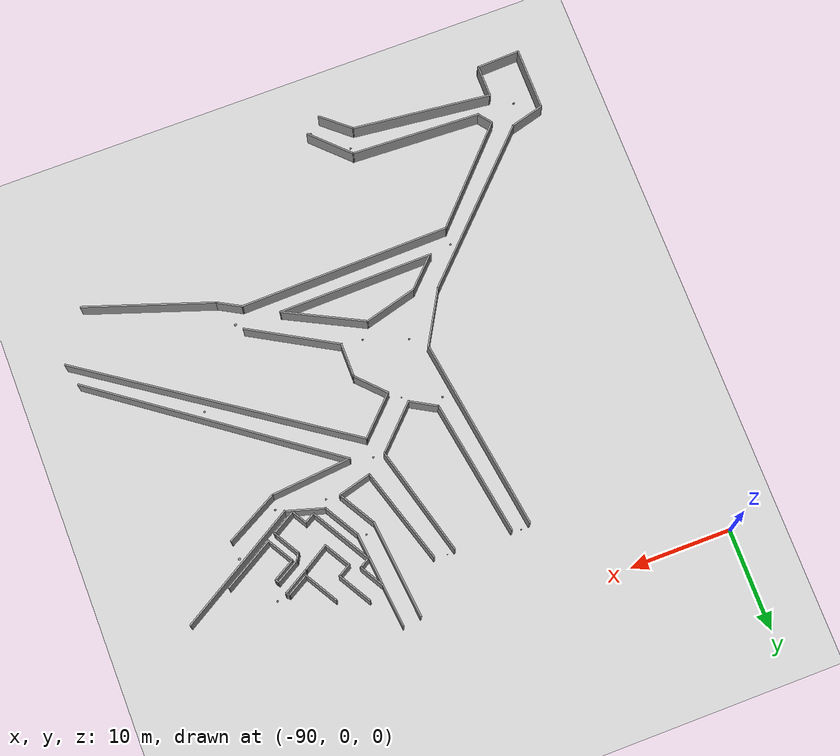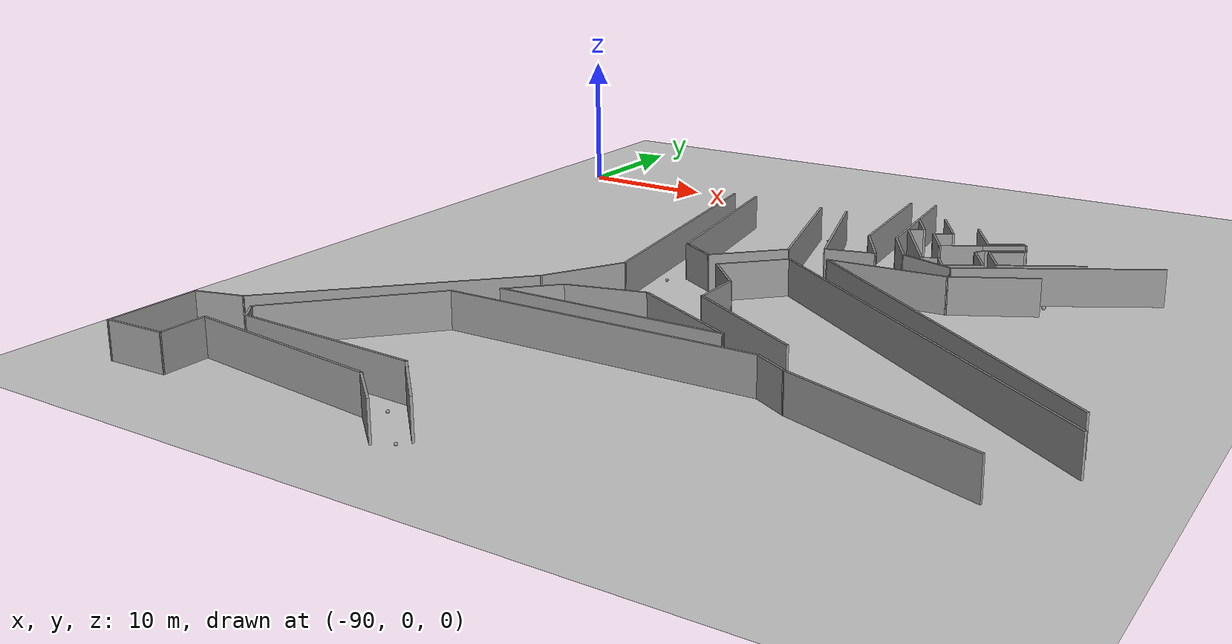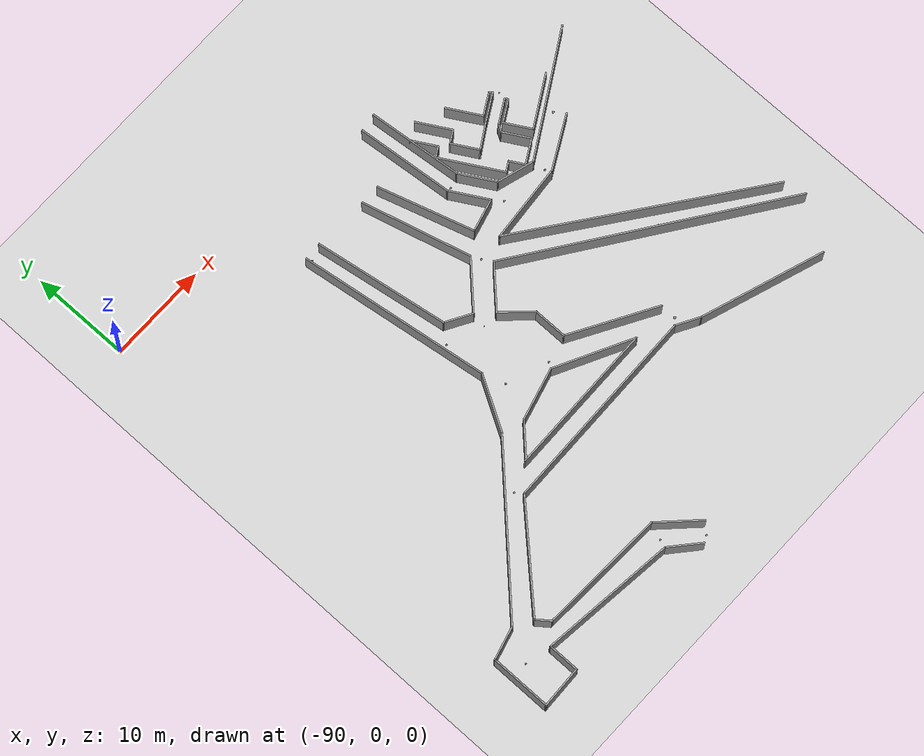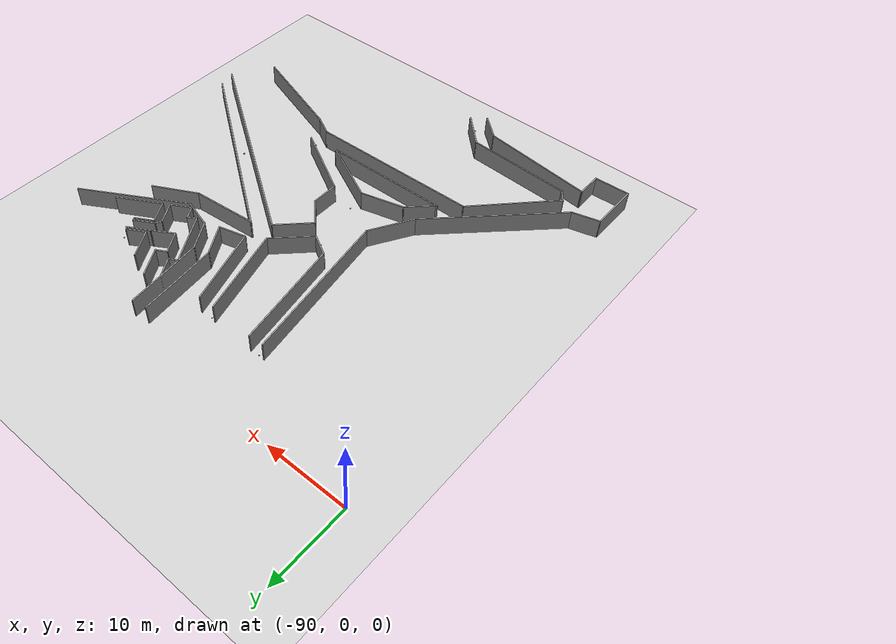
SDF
<sdf version="1.7">
 <world name="default">
  <model name="ground_plane">
   <static>1</static>
   <link name="link">
    <collision name="collision">
     <geometry><plane><normal>0 0 1</normal><size>100 100</size></plane></geometry>
     <surface><friction><ode><mu>100</mu><mu2>50</mu2></ode></friction></surface>
    </collision>
    <visual name="visual">
     <cast_shadows>0</cast_shadows>
     <geometry><plane><normal>0 0 1</normal><size>100 100</size></plane></geometry>
     <material>
      <script><uri>file://media/materials/scripts/gazebo.material</uri><name>Gazebo/Grey</name></script>
     </material>
    </visual>
   </link>
  </model>
  <model name="final_max_v1">
   <pose>-2.5231 0.6891 0 0 -0 0</pose>
   <link name="Wall_0">
    <collision name="Wall_0_Collision">
     <geometry><box><size>6.25 0.15 2.5</size></box></geometry>
     <pose>0 0 1.25 0 -0 0</pose>
    </collision>
    <visual name="Wall_0_Visual">
     <pose>0 0 1.25 0 -0 0</pose>
     <geometry><box><size>6.25 0.15 2.5</size></box></geometry>
     <material>
      <script><uri>file://media/materials/scripts/gazebo.material</uri><name>Gazebo/Grey</name></script>
      <ambient>1 1 1 1</ambient>
     </material>
     <meta><layer>0</layer></meta>
    </visual>
    <pose>-86.0864 -48.4326 0 0 -0 1.5708</pose>
   </link>
   <link name="Wall_100">
    <collision name="Wall_100_Collision">
     <geometry><box><size>19.4552 0.15 2.5</size></box></geometry>
     <pose>0 0 1.25 0 -0 0</pose>
    </collision>
    <visual name="Wall_100_Visual">
     <pose>0 0 1.25 0 -0 0</pose>
     <geometry><box><size>19.4552 0.15 2.5</size></box></geometry>
     <material>
      <script><uri>file://media/materials/scripts/gazebo.material</uri><name>Gazebo/Grey</name></script>
      <ambient>1 1 1 1</ambient>
     </material>
     <meta><layer>0</layer></meta>
    </visual>
    <pose>-68.6774 -17.2731 0 0 -0 1.7136</pose>
   </link>
   <link name="Wall_126">
    <collision name="Wall_126_Collision">
     <geometry><box><size>3.75 0.15 2.5</size></box></geometry>
     <pose>0 0 1.25 0 -0 0</pose>
    </collision>
    <visual name="Wall_126_Visual">
     <pose>0 0 1.25 0 -0 0</pose>
     <geometry><box><size>3.75 0.15 2.5</size></box></geometry>
     <material>
      <script><uri>file://media/materials/scripts/gazebo.material</uri><name>Gazebo/Grey</name></script>
      <ambient>1 1 1 1</ambient>
     </material>
     <meta><layer>0</layer></meta>
    </visual>
    <pose>-69.2284 -33.7829 0 0 -0 0.785398</pose>
   </link>
   <link name="Wall_127">
    <collision name="Wall_127_Collision">
     <geometry><box><size>5.5 0.15 2.5</size></box></geometry>
     <pose>0 0 1.25 0 -0 0</pose>
    </collision>
    <visual name="Wall_127_Visual">
     <pose>0 0 1.25 0 -0 0</pose>
     <geometry><box><size>5.5 0.15 2.5</size></box></geometry>
     <material>
      <script><uri>file://media/materials/scripts/gazebo.material</uri><name>Gazebo/Grey</name></script>
      <ambient>1 1 1 1</ambient>
     </material>
     <meta><layer>0</layer></meta>
    </visual>
    <pose>-65.3717 -31.8178 0 0 -0 0.261799</pose>
   </link>
   <link name="Wall_128">
    <collision name="Wall_128_Collision">
     <geometry><box><size>8.46258 0.15 2.5</size></box></geometry>
     <pose>0 0 1.25 0 -0 0</pose>
    </collision>
    <visual name="Wall_128_Visual">
     <pose>0 0 1.25 0 -0 0</pose>
     <geometry><box><size>8.46258 0.15 2.5</size></box></geometry>
     <material>
      <script><uri>file://media/materials/scripts/gazebo.material</uri><name>Gazebo/Grey</name></script>
      <ambient>1 1 1 1</ambient>
     </material>
     <meta><layer>0</layer></meta>
    </visual>
    <pose>-59.0888 -33.0206 0 0 -0 -0.47347</pose>
   </link>
   <link name="Wall_129">
    <collision name="Wall_129_Collision">
     <geometry><box><size>15.488 0.15 2.5</size></box></geometry>
     <pose>0 0 1.25 0 -0 0</pose>
    </collision>
    <visual name="Wall_129_Visual">
     <pose>0 0 1.25 0 -0 0</pose>
     <geometry><box><size>15.488 0.15 2.5</size></box></geometry>
     <material>
      <script><uri>file://media/materials/scripts/gazebo.material</uri><name>Gazebo/Grey</name></script>
      <ambient>1 1 1 1</ambient>
     </material>
     <meta><layer>0</layer></meta>
    </visual>
    <pose>-63.0581 -35.0458 0 0 -0 -3.12463</pose>
   </link>
   <link name="Wall_142">
    <collision name="Wall_142_Collision">
     <geometry><box><size>3 0.15 2.5</size></box></geometry>
     <pose>0 0 1.25 0 -0 0</pose>
    </collision>
    <visual name="Wall_142_Visual">
     <pose>0 0 1.25 0 -0 0</pose>
     <geometry><box><size>3 0.15 2.5</size></box></geometry>
     <material>
      <script><uri>file://media/materials/scripts/gazebo.material</uri><name>Gazebo/Grey</name></script>
      <ambient>1 1 1 1</ambient>
     </material>
     <meta><layer>0</layer></meta>
    </visual>
    <pose>-64.8763 -21.7565 0 0 -0 2.61799</pose>
   </link>
   <link name="Wall_143">
    <collision name="Wall_143_Collision">
     <geometry><box><size>13.7057 0.15 2.5</size></box></geometry>
     <pose>0 0 1.25 0 -0 0</pose>
    </collision>
    <visual name="Wall_143_Visual">
     <pose>0 0 1.25 0 -0 0</pose>
     <geometry><box><size>13.7057 0.15 2.5</size></box></geometry>
     <material>
      <script><uri>file://media/materials/scripts/gazebo.material</uri><name>Gazebo/Grey</name></script>
      <ambient>1 1 1 1</ambient>
     </material>
     <meta><layer>0</layer></meta>
    </visual>
    <pose>-67.1763 -14.3505 0 0 -0 1.72872</pose>
   </link>
   <link name="Wall_177">
    <collision name="Wall_177_Collision">
     <geometry><box><size>11.25 0.15 2.5</size></box></geometry>
     <pose>0 0 1.25 0 -0 0</pose>
    </collision>
    <visual name="Wall_177_Visual">
     <pose>0 0 1.25 0 -0 0</pose>
     <geometry><box><size>11.25 0.15 2.5</size></box></geometry>
     <material>
      <script><uri>file://media/materials/scripts/gazebo.material</uri><name>Gazebo/Grey</name></script>
      <ambient>1 1 1 1</ambient>
     </material>
     <meta><layer>0</layer></meta>
    </visual>
    <pose>-61.219 -13.2274 0 0 -0 1.8326</pose>
   </link>
   <link name="Wall_195">
    <collision name="Wall_195_Collision">
     <geometry><box><size>9.95782 0.15 2.5</size></box></geometry>
     <pose>0 0 1.25 0 -0 0</pose>
    </collision>
    <visual name="Wall_195_Visual">
     <pose>0 0 1.25 0 -0 0</pose>
     <geometry><box><size>9.95782 0.15 2.5</size></box></geometry>
     <material>
      <script><uri>file://media/materials/scripts/gazebo.material</uri><name>Gazebo/Grey</name></script>
      <ambient>1 1 1 1</ambient>
     </material>
     <meta><layer>0</layer></meta>
    </visual>
    <pose>-59.1949 -12.5474 0 0 -0 1.86585</pose>
   </link>
   <link name="Wall_2">
    <collision name="Wall_2_Collision">
     <geometry><box><size>3.25 0.15 2.5</size></box></geometry>
     <pose>0 0 1.25 0 -0 0</pose>
    </collision>
    <visual name="Wall_2_Visual">
     <pose>0 0 1.25 0 -0 0</pose>
     <geometry><box><size>3.25 0.15 2.5</size></box></geometry>
     <material>
      <script><uri>file://media/materials/scripts/gazebo.material</uri><name>Gazebo/Grey</name></script>
      <ambient>1 1 1 1</ambient>
     </material>
     <meta><layer>0</layer></meta>
    </visual>
    <pose>-81.869 -49.7753 0 0 -0 1.5708</pose>
   </link>
   <link name="Wall_3">
    <collision name="Wall_3_Collision">
     <geometry><box><size>13.848 0.15 2.5</size></box></geometry>
     <pose>0 0 1.25 0 -0 0</pose>
    </collision>
    <visual name="Wall_3_Visual">
     <pose>0 0 1.25 0 -0 0</pose>
     <geometry><box><size>13.848 0.15 2.5</size></box></geometry>
     <material>
      <script><uri>file://media/materials/scripts/gazebo.material</uri><name>Gazebo/Grey</name></script>
      <ambient>1 1 1 1</ambient>
     </material>
     <meta><layer>0</layer></meta>
    </visual>
    <pose>-75.0629 -48.9907 0 0 -0 -0.111993</pose>
   </link>
   <link name="Wall_4">
    <collision name="Wall_4_Collision">
     <geometry><box><size>3.68163 0.15 2.5</size></box></geometry>
     <pose>0 0 1.25 0 -0 0</pose>
    </collision>
    <visual name="Wall_4_Visual">
     <pose>0 0 1.25 0 -0 0</pose>
     <geometry><box><size>3.68163 0.15 2.5</size></box></geometry>
     <material>
      <script><uri>file://media/materials/scripts/gazebo.material</uri><name>Gazebo/Grey</name></script>
      <ambient>1 1 1 1</ambient>
     </material>
     <meta><layer>0</layer></meta>
    </visual>
    <pose>-66.923 -50.9134 0 0 -0 -0.71465</pose>
   </link>
   <link name="Wall_471">
    <collision name="Wall_471_Collision">
     <geometry><box><size>3.5 0.15 2.5</size></box></geometry>
     <pose>0 0 1.25 0 -0 0</pose>
    </collision>
    <visual name="Wall_471_Visual">
     <pose>0 0 1.25 0 -0 0</pose>
     <geometry><box><size>3.5 0.15 2.5</size></box></geometry>
     <material>
      <script><uri>file://media/materials/scripts/gazebo.material</uri><name>Gazebo/Grey</name></script>
      <ambient>1 1 1 1</ambient>
     </material>
     <meta><layer>0</layer></meta>
    </visual>
    <pose>-56.1509 -16.8059 0 0 -0 0.261799</pose>
   </link>
   <link name="Wall_478">
    <collision name="Wall_478_Collision">
     <geometry><box><size>5.5 0.15 2.5</size></box></geometry>
     <pose>0 0 1.25 0 -0 0</pose>
    </collision>
    <visual name="Wall_478_Visual">
     <pose>0 0 1.25 0 -0 0</pose>
     <geometry><box><size>5.5 0.15 2.5</size></box></geometry>
     <material>
      <script><uri>file://media/materials/scripts/gazebo.material</uri><name>Gazebo/Grey</name></script>
      <ambient>1 1 1 1</ambient>
     </material>
     <meta><layer>0</layer></meta>
    </visual>
    <pose>-61.7507 -20.5775 0 0 -0 0.785398</pose>
   </link>
   <link name="Wall_481">
    <collision name="Wall_481_Collision">
     <geometry><box><size>5 0.15 2.5</size></box></geometry>
     <pose>0 0 1.25 0 -0 0</pose>
    </collision>
    <visual name="Wall_481_Visual">
     <pose>0 0 1.25 0 -0 0</pose>
     <geometry><box><size>5 0.15 2.5</size></box></geometry>
     <material>
      <script><uri>file://media/materials/scripts/gazebo.material</uri><name>Gazebo/Grey</name></script>
      <ambient>1 1 1 1</ambient>
     </material>
     <meta><layer>0</layer></meta>
    </visual>
    <pose>-60.4316 -22.231 0 0 -0 0.785398</pose>
   </link>
   <link name="Wall_482">
    <collision name="Wall_482_Collision">
     <geometry><box><size>29.4407 0.15 2.5</size></box></geometry>
     <pose>0 0 1.25 0 -0 0</pose>
    </collision>
    <visual name="Wall_482_Visual">
     <pose>0 0 1.25 0 -0 0</pose>
     <geometry><box><size>29.4407 0.15 2.5</size></box></geometry>
     <material>
      <script><uri>file://media/materials/scripts/gazebo.material</uri><name>Gazebo/Grey</name></script>
      <ambient>1 1 1 1</ambient>
     </material>
     <meta><layer>0</layer></meta>
    </visual>
    <pose>-46.6969 -28.8832 0 0 -0 -0.60809</pose>
   </link>
   <link name="Wall_487">
    <collision name="Wall_487_Collision">
     <geometry><box><size>9.5 0.15 2.5</size></box></geometry>
     <pose>0 0 1.25 0 -0 0</pose>
    </collision>
    <visual name="Wall_487_Visual">
     <pose>0 0 1.25 0 -0 0</pose>
     <geometry><box><size>9.5 0.15 2.5</size></box></geometry>
     <material>
      <script><uri>file://media/materials/scripts/gazebo.material</uri><name>Gazebo/Grey</name></script>
      <ambient>1 1 1 1</ambient>
     </material>
     <meta><layer>0</layer></meta>
    </visual>
    <pose>-55.6298 -32.2518 0 0 -0 2.61799</pose>
   </link>
   <link name="Wall_488">
    <collision name="Wall_488_Collision">
     <geometry><box><size>3.5 0.15 2.5</size></box></geometry>
     <pose>0 0 1.25 0 -0 0</pose>
    </collision>
    <visual name="Wall_488_Visual">
     <pose>0 0 1.25 0 -0 0</pose>
     <geometry><box><size>3.5 0.15 2.5</size></box></geometry>
     <material>
      <script><uri>file://media/materials/scripts/gazebo.material</uri><name>Gazebo/Grey</name></script>
      <ambient>1 1 1 1</ambient>
     </material>
     <meta><layer>0</layer></meta>
    </visual>
    <pose>-59.6785 -28.2393 0 0 -0 1.5708</pose>
   </link>
   <link name="Wall_491">
    <collision name="Wall_491_Collision">
     <geometry><box><size>3.74817 0.15 2.5</size></box></geometry>
     <pose>0 0 1.25 0 -0 0</pose>
    </collision>
    <visual name="Wall_491_Visual">
     <pose>0 0 1.25 0 -0 0</pose>
     <geometry><box><size>3.74817 0.15 2.5</size></box></geometry>
     <material>
      <script><uri>file://media/materials/scripts/gazebo.material</uri><name>Gazebo/Grey</name></script>
      <ambient>1 1 1 1</ambient>
     </material>
     <meta><layer>0</layer></meta>
    </visual>
    <pose>-60.9124 -25.255 0 0 -0 -0.814998</pose>
   </link>
   <link name="Wall_569">
    <collision name="Wall_569_Collision">
     <geometry><box><size>26.6614 0.15 2.5</size></box></geometry>
     <pose>0 0 1.25 0 -0 0</pose>
    </collision>
    <visual name="Wall_569_Visual">
     <pose>0 0 1.25 0 -0 0</pose>
     <geometry><box><size>26.6614 0.15 2.5</size></box></geometry>
     <material>
      <script><uri>file://media/materials/scripts/gazebo.material</uri><name>Gazebo/Grey</name></script>
      <ambient>1 1 1 1</ambient>
     </material>
     <meta><layer>0</layer></meta>
    </visual>
    <pose>-45.8954 -27.1535 0 0 -0 -0.634161</pose>
   </link>
   <link name="Wall_572">
    <collision name="Wall_572_Collision">
     <geometry><box><size>5.86248 0.15 2.5</size></box></geometry>
     <pose>0 0 1.25 0 -0 0</pose>
    </collision>
    <visual name="Wall_572_Visual">
     <pose>0 0 1.25 0 -0 0</pose>
     <geometry><box><size>5.86248 0.15 2.5</size></box></geometry>
     <material>
      <script><uri>file://media/materials/scripts/gazebo.material</uri><name>Gazebo/Grey</name></script>
      <ambient>1 1 1 1</ambient>
     </material>
     <meta><layer>0</layer></meta>
    </visual>
    <pose>-46.1662 -17.2489 0 0 -0 -2.64765</pose>
   </link>
   <link name="Wall_573">
    <collision name="Wall_573_Collision">
     <geometry><box><size>8.07338 0.15 2.5</size></box></geometry>
     <pose>0 0 1.25 0 -0 0</pose>
    </collision>
    <visual name="Wall_573_Visual">
     <pose>0 0 1.25 0 -0 0</pose>
     <geometry><box><size>8.07338 0.15 2.5</size></box></geometry>
     <material>
      <script><uri>file://media/materials/scripts/gazebo.material</uri><name>Gazebo/Grey</name></script>
      <ambient>1 1 1 1</ambient>
     </material>
     <meta><layer>0</layer></meta>
    </visual>
    <pose>-52.6274 -18.9513 0 0 -0 -3.05358</pose>
   </link>
   <link name="Wall_622">
    <collision name="Wall_622_Collision">
     <geometry><box><size>4.25 0.15 2.5</size></box></geometry>
     <pose>0 0 1.25 0 -0 0</pose>
    </collision>
    <visual name="Wall_622_Visual">
     <pose>0 0 1.25 0 -0 0</pose>
     <geometry><box><size>4.25 0.15 2.5</size></box></geometry>
     <material>
      <script><uri>file://media/materials/scripts/gazebo.material</uri><name>Gazebo/Grey</name></script>
      <ambient>1 1 1 1</ambient>
     </material>
     <meta><layer>0</layer></meta>
    </visual>
    <pose>-55.558 -14.597 0 0 -0 2.0944</pose>
   </link>
   <link name="Wall_623">
    <collision name="Wall_623_Collision">
     <geometry><box><size>9.84854 0.15 2.5</size></box></geometry>
     <pose>0 0 1.25 0 -0 0</pose>
    </collision>
    <visual name="Wall_623_Visual">
     <pose>0 0 1.25 0 -0 0</pose>
     <geometry><box><size>9.84854 0.15 2.5</size></box></geometry>
     <material>
      <script><uri>file://media/materials/scripts/gazebo.material</uri><name>Gazebo/Grey</name></script>
      <ambient>1 1 1 1</ambient>
     </material>
     <meta><layer>0</layer></meta>
    </visual>
    <pose>-57.0579 -7.99572 0 0 -0 1.66889</pose>
   </link>
   <link name="Wall_633">
    <collision name="Wall_633_Collision">
     <geometry><box><size>4 0.15 2.5</size></box></geometry>
     <pose>0 0 1.25 0 -0 0</pose>
    </collision>
    <visual name="Wall_633_Visual">
     <pose>0 0 1.25 0 -0 0</pose>
     <geometry><box><size>4 0.15 2.5</size></box></geometry>
     <material>
      <script><uri>file://media/materials/scripts/gazebo.material</uri><name>Gazebo/Grey</name></script>
      <ambient>1 1 1 1</ambient>
     </material>
     <meta><layer>0</layer></meta>
    </visual>
    <pose>-53.8105 -14.0024 0 0 -0 2.0944</pose>
   </link>
   <link name="Wall_634">
    <collision name="Wall_634_Collision">
     <geometry><box><size>9.63115 0.15 2.5</size></box></geometry>
     <pose>0 0 1.25 0 -0 0</pose>
    </collision>
    <visual name="Wall_634_Visual">
     <pose>0 0 1.25 0 -0 0</pose>
     <geometry><box><size>9.63115 0.15 2.5</size></box></geometry>
     <material>
      <script><uri>file://media/materials/scripts/gazebo.material</uri><name>Gazebo/Grey</name></script>
      <ambient>1 1 1 1</ambient>
     </material>
     <meta><layer>0</layer></meta>
    </visual>
    <pose>-55.2461 -7.61841 0 0 -0 1.67077</pose>
   </link>
   <link name="Wall_641">
    <collision name="Wall_641_Collision">
     <geometry><box><size>3.96544 0.15 2.5</size></box></geometry>
     <pose>0 0 1.25 0 -0 0</pose>
    </collision>
    <visual name="Wall_641_Visual">
     <pose>0 0 1.25 0 -0 0</pose>
     <geometry><box><size>3.96544 0.15 2.5</size></box></geometry>
     <material>
      <script><uri>file://media/materials/scripts/gazebo.material</uri><name>Gazebo/Grey</name></script>
      <ambient>1 1 1 1</ambient>
     </material>
     <meta><layer>0</layer></meta>
    </visual>
    <pose>-51.0202 -16.216 0 0 -0 -0.290546</pose>
   </link>
   <link name="Wall_642">
    <collision name="Wall_642_Collision">
     <geometry><box><size>13.6938 0.15 2.5</size></box></geometry>
     <pose>0 0 1.25 0 -0 0</pose>
    </collision>
    <visual name="Wall_642_Visual">
     <pose>0 0 1.25 0 -0 0</pose>
     <geometry><box><size>13.6938 0.15 2.5</size></box></geometry>
     <material>
      <script><uri>file://media/materials/scripts/gazebo.material</uri><name>Gazebo/Grey</name></script>
      <ambient>1 1 1 1</ambient>
     </material>
     <meta><layer>0</layer></meta>
    </visual>
    <pose>-43.3618 -13.3183 0 0 -0 0.533565</pose>
   </link>
   <link name="Wall_661">
    <collision name="Wall_661_Collision">
     <geometry><box><size>3.75 0.15 2.5</size></box></geometry>
     <pose>0 0 1.25 0 -0 0</pose>
    </collision>
    <visual name="Wall_661_Visual">
     <pose>0 0 1.25 0 -0 0</pose>
     <geometry><box><size>3.75 0.15 2.5</size></box></geometry>
     <material>
      <script><uri>file://media/materials/scripts/gazebo.material</uri><name>Gazebo/Grey</name></script>
      <ambient>1 1 1 1</ambient>
     </material>
     <meta><layer>0</layer></meta>
    </visual>
    <pose>-49.8924 -8.87143 0 0 -0 -1.0472</pose>
   </link>
   <link name="Wall_662">
    <collision name="Wall_662_Collision">
     <geometry><box><size>2.5 0.15 2.5</size></box></geometry>
     <pose>0 0 1.25 0 -0 0</pose>
    </collision>
    <visual name="Wall_662_Visual">
     <pose>0 0 1.25 0 -0 0</pose>
     <geometry><box><size>2.5 0.15 2.5</size></box></geometry>
     <material>
      <script><uri>file://media/materials/scripts/gazebo.material</uri><name>Gazebo/Grey</name></script>
      <ambient>1 1 1 1</ambient>
     </material>
     <meta><layer>0</layer></meta>
    </visual>
    <pose>-47.9748 -9.84278 0 0 -0 0.523599</pose>
   </link>
   <link name="Wall_663">
    <collision name="Wall_663_Collision">
     <geometry><box><size>0.5 0.15 2.5</size></box></geometry>
     <pose>0 0 1.25 0 -0 0</pose>
    </collision>
    <visual name="Wall_663_Visual">
     <pose>0 0 1.25 0 -0 0</pose>
     <geometry><box><size>0.5 0.15 2.5</size></box></geometry>
     <material>
      <script><uri>file://media/materials/scripts/gazebo.material</uri><name>Gazebo/Grey</name></script>
      <ambient>1 1 1 1</ambient>
     </material>
     <meta><layer>0</layer></meta>
    </visual>
    <pose>-46.8335 -9.37902 0 0 -0 -0.785398</pose>
   </link>
   <link name="Wall_664">
    <collision name="Wall_664_Collision">
     <geometry><box><size>3 0.15 2.5</size></box></geometry>
     <pose>0 0 1.25 0 -0 0</pose>
    </collision>
    <visual name="Wall_664_Visual">
     <pose>0 0 1.25 0 -0 0</pose>
     <geometry><box><size>3 0.15 2.5</size></box></geometry>
     <material>
      <script><uri>file://media/materials/scripts/gazebo.material</uri><name>Gazebo/Grey</name></script>
      <ambient>1 1 1 1</ambient>
     </material>
     <meta><layer>0</layer></meta>
    </visual>
    <pose>-47.9439 -10.2153 0 0 -0 -2.61799</pose>
   </link>
   <link name="Wall_667">
    <collision name="Wall_667_Collision">
     <geometry><box><size>5.75 0.15 2.5</size></box></geometry>
     <pose>0 0 1.25 0 -0 0</pose>
    </collision>
    <visual name="Wall_667_Visual">
     <pose>0 0 1.25 0 -0 0</pose>
     <geometry><box><size>5.75 0.15 2.5</size></box></geometry>
     <material>
      <script><uri>file://media/materials/scripts/gazebo.material</uri><name>Gazebo/Grey</name></script>
      <ambient>1 1 1 1</ambient>
     </material>
     <meta><layer>0</layer></meta>
    </visual>
    <pose>-44.4362 -13.2676 0 0 -0 -2.61799</pose>
   </link>
   <link name="Wall_668">
    <collision name="Wall_668_Collision">
     <geometry><box><size>3 0.15 2.5</size></box></geometry>
     <pose>0 0 1.25 0 -0 0</pose>
    </collision>
    <visual name="Wall_668_Visual">
     <pose>0 0 1.25 0 -0 0</pose>
     <geometry><box><size>3 0.15 2.5</size></box></geometry>
     <material>
      <script><uri>file://media/materials/scripts/gazebo.material</uri><name>Gazebo/Grey</name></script>
      <ambient>1 1 1 1</ambient>
     </material>
     <meta><layer>0</layer></meta>
    </visual>
    <pose>-47.5736 -13.4335 0 0 -0 2.0944</pose>
   </link>
   <link name="Wall_669">
    <collision name="Wall_669_Collision">
     <geometry><box><size>2.5 0.15 2.5</size></box></geometry>
     <pose>0 0 1.25 0 -0 0</pose>
    </collision>
    <visual name="Wall_669_Visual">
     <pose>0 0 1.25 0 -0 0</pose>
     <geometry><box><size>2.5 0.15 2.5</size></box></geometry>
     <material>
      <script><uri>file://media/materials/scripts/gazebo.material</uri><name>Gazebo/Grey</name></script>
      <ambient>1 1 1 1</ambient>
     </material>
     <meta><layer>0</layer></meta>
    </visual>
    <pose>-47.2685 -11.6119 0 0 -0 0.523599</pose>
   </link>
   <link name="Wall_670">
    <collision name="Wall_670_Collision">
     <geometry><box><size>0.5 0.15 2.5</size></box></geometry>
     <pose>0 0 1.25 0 -0 0</pose>
    </collision>
    <visual name="Wall_670_Visual">
     <pose>0 0 1.25 0 -0 0</pose>
     <geometry><box><size>0.5 0.15 2.5</size></box></geometry>
     <material>
      <script><uri>file://media/materials/scripts/gazebo.material</uri><name>Gazebo/Grey</name></script>
      <ambient>1 1 1 1</ambient>
     </material>
     <meta><layer>0</layer></meta>
    </visual>
    <pose>-46.3384 -10.8729 0 0 -0 2.0944</pose>
   </link>
   <link name="Wall_671">
    <collision name="Wall_671_Collision">
     <geometry><box><size>2.75 0.15 2.5</size></box></geometry>
     <pose>0 0 1.25 0 -0 0</pose>
    </collision>
    <visual name="Wall_671_Visual">
     <pose>0 0 1.25 0 -0 0</pose>
     <geometry><box><size>2.75 0.15 2.5</size></box></geometry>
     <material>
      <script><uri>file://media/materials/scripts/gazebo.material</uri><name>Gazebo/Grey</name></script>
      <ambient>1 1 1 1</ambient>
     </material>
     <meta><layer>0</layer></meta>
    </visual>
    <pose>-47.5517 -11.3713 0 0 -0 -2.61799</pose>
   </link>
   <link name="Wall_673">
    <collision name="Wall_673_Collision">
     <geometry><box><size>1.25 0.15 2.5</size></box></geometry>
     <pose>0 0 1.25 0 -0 0</pose>
    </collision>
    <visual name="Wall_673_Visual">
     <pose>0 0 1.25 0 -0 0</pose>
     <geometry><box><size>1.25 0.15 2.5</size></box></geometry>
     <material>
      <script><uri>file://media/materials/scripts/gazebo.material</uri><name>Gazebo/Grey</name></script>
      <ambient>1 1 1 1</ambient>
     </material>
     <meta><layer>0</layer></meta>
    </visual>
    <pose>-54.458 -9.61498 0 0 -0 0.523599</pose>
   </link>
   <link name="Wall_674">
    <collision name="Wall_674_Collision">
     <geometry><box><size>2.75 0.15 2.5</size></box></geometry>
     <pose>0 0 1.25 0 -0 0</pose>
    </collision>
    <visual name="Wall_674_Visual">
     <pose>0 0 1.25 0 -0 0</pose>
     <geometry><box><size>2.75 0.15 2.5</size></box></geometry>
     <material>
      <script><uri>file://media/materials/scripts/gazebo.material</uri><name>Gazebo/Grey</name></script>
      <ambient>1 1 1 1</ambient>
     </material>
     <meta><layer>0</layer></meta>
    </visual>
    <pose>-54.6316 -8.21414 0 0 -0 2.0944</pose>
   </link>
   <link name="Wall_676">
    <collision name="Wall_676_Collision">
     <geometry><box><size>3.75 0.15 2.5</size></box></geometry>
     <pose>0 0 1.25 0 -0 0</pose>
    </collision>
    <visual name="Wall_676_Visual">
     <pose>0 0 1.25 0 -0 0</pose>
     <geometry><box><size>3.75 0.15 2.5</size></box></geometry>
     <material>
      <script><uri>file://media/materials/scripts/gazebo.material</uri><name>Gazebo/Grey</name></script>
      <ambient>1 1 1 1</ambient>
     </material>
     <meta><layer>0</layer></meta>
    </visual>
    <pose>-52.7795 -7.72216 0 0 -0 -1.0472</pose>
   </link>
   <link name="Wall_677">
    <collision name="Wall_677_Collision">
     <geometry><box><size>1.5 0.15 2.5</size></box></geometry>
     <pose>0 0 1.25 0 -0 0</pose>
    </collision>
    <visual name="Wall_677_Visual">
     <pose>0 0 1.25 0 -0 0</pose>
     <geometry><box><size>1.5 0.15 2.5</size></box></geometry>
     <material>
      <script><uri>file://media/materials/scripts/gazebo.material</uri><name>Gazebo/Grey</name></script>
      <ambient>1 1 1 1</ambient>
     </material>
     <meta><layer>0</layer></meta>
    </visual>
    <pose>-52.4641 -9.6185 0 0 -0 -2.61799</pose>
   </link>
   <link name="Wall_678">
    <collision name="Wall_678_Collision">
     <geometry><box><size>3 0.15 2.5</size></box></geometry>
     <pose>0 0 1.25 0 -0 0</pose>
    </collision>
    <visual name="Wall_678_Visual">
     <pose>0 0 1.25 0 -0 0</pose>
     <geometry><box><size>3 0.15 2.5</size></box></geometry>
     <material>
      <script><uri>file://media/materials/scripts/gazebo.material</uri><name>Gazebo/Grey</name></script>
      <ambient>1 1 1 1</ambient>
     </material>
     <meta><layer>0</layer></meta>
    </visual>
    <pose>-52.3361 -11.1901 0 0 -0 -1.0472</pose>
   </link>
   <link name="Wall_679">
    <collision name="Wall_679_Collision">
     <geometry><box><size>3.01715 0.15 2.5</size></box></geometry>
     <pose>0 0 1.25 0 -0 0</pose>
    </collision>
    <visual name="Wall_679_Visual">
     <pose>0 0 1.25 0 -0 0</pose>
     <geometry><box><size>3.01715 0.15 2.5</size></box></geometry>
     <material>
      <script><uri>file://media/materials/scripts/gazebo.material</uri><name>Gazebo/Grey</name></script>
      <ambient>1 1 1 1</ambient>
     </material>
     <meta><layer>0</layer></meta>
    </visual>
    <pose>-50.4008 -11.676 0 0 -0 0.549094</pose>
   </link>
   <link name="Wall_681">
    <collision name="Wall_681_Collision">
     <geometry><box><size>6.75 0.15 2.5</size></box></geometry>
     <pose>0 0 1.25 0 -0 0</pose>
    </collision>
    <visual name="Wall_681_Visual">
     <pose>0 0 1.25 0 -0 0</pose>
     <geometry><box><size>6.75 0.15 2.5</size></box></geometry>
     <material>
      <script><uri>file://media/materials/scripts/gazebo.material</uri><name>Gazebo/Grey</name></script>
      <ambient>1 1 1 1</ambient>
     </material>
     <meta><layer>0</layer></meta>
    </visual>
    <pose>-53.2843 -12.7479 0 0 -0 -1.0472</pose>
   </link>
   <link name="Wall_682">
    <collision name="Wall_682_Collision">
     <geometry><box><size>1.25 0.15 2.5</size></box></geometry>
     <pose>0 0 1.25 0 -0 0</pose>
    </collision>
    <visual name="Wall_682_Visual">
     <pose>0 0 1.25 0 -0 0</pose>
     <geometry><box><size>1.25 0.15 2.5</size></box></geometry>
     <material>
      <script><uri>file://media/materials/scripts/gazebo.material</uri><name>Gazebo/Grey</name></script>
      <ambient>1 1 1 1</ambient>
     </material>
     <meta><layer>0</layer></meta>
    </visual>
    <pose>-51.158 -15.3307 0 0 -0 0.523599</pose>
   </link>
   <link name="Wall_683">
    <collision name="Wall_683_Collision">
     <geometry><box><size>1.75 0.15 2.5</size></box></geometry>
     <pose>0 0 1.25 0 -0 0</pose>
    </collision>
    <visual name="Wall_683_Visual">
     <pose>0 0 1.25 0 -0 0</pose>
     <geometry><box><size>1.75 0.15 2.5</size></box></geometry>
     <material>
      <script><uri>file://media/materials/scripts/gazebo.material</uri><name>Gazebo/Grey</name></script>
      <ambient>1 1 1 1</ambient>
     </material>
     <meta><layer>0</layer></meta>
    </visual>
    <pose>-50.2816 -15.7486 0 0 -0 -1.0472</pose>
   </link>
   <link name="Wall_684">
    <collision name="Wall_684_Collision">
     <geometry><box><size>2.75 0.15 2.5</size></box></geometry>
     <pose>0 0 1.25 0 -0 0</pose>
    </collision>
    <visual name="Wall_684_Visual">
     <pose>0 0 1.25 0 -0 0</pose>
     <geometry><box><size>2.75 0.15 2.5</size></box></geometry>
     <material>
      <script><uri>file://media/materials/scripts/gazebo.material</uri><name>Gazebo/Grey</name></script>
      <ambient>1 1 1 1</ambient>
     </material>
     <meta><layer>0</layer></meta>
    </visual>
    <pose>-48.7558 -15.7914 0 0 -0 0.523599</pose>
   </link>
   <link name="Wall_685">
    <collision name="Wall_685_Collision">
     <geometry><box><size>3 0.15 2.5</size></box></geometry>
     <pose>0 0 1.25 0 -0 0</pose>
    </collision>
    <visual name="Wall_685_Visual">
     <pose>0 0 1.25 0 -0 0</pose>
     <geometry><box><size>3 0.15 2.5</size></box></geometry>
     <material>
      <script><uri>file://media/materials/scripts/gazebo.material</uri><name>Gazebo/Grey</name></script>
      <ambient>1 1 1 1</ambient>
     </material>
     <meta><layer>0</layer></meta>
    </visual>
    <pose>-48.3425 -13.9073 0 0 -0 2.0944</pose>
   </link>
   <link name="Wall_686">
    <collision name="Wall_686_Collision">
     <geometry><box><size>0.903239 0.15 2.5</size></box></geometry>
     <pose>0 0 1.25 0 -0 0</pose>
    </collision>
    <visual name="Wall_686_Visual">
     <pose>0 0 1.25 0 -0 0</pose>
     <geometry><box><size>0.903239 0.15 2.5</size></box></geometry>
     <material>
      <script><uri>file://media/materials/scripts/gazebo.material</uri><name>Gazebo/Grey</name></script>
      <ambient>1 1 1 1</ambient>
     </material>
     <meta><layer>0</layer></meta>
    </visual>
    <pose>-48.8663 -12.3473 0 0 -0 1.046</pose>
   </link>
   <link name="Wall_714">
    <collision name="Wall_714_Collision">
     <geometry><box><size>4.3703 0.15 2.5</size></box></geometry>
     <pose>0 0 1.25 0 -0 0</pose>
    </collision>
    <visual name="Wall_714_Visual">
     <pose>0 0 1.25 0 -0 0</pose>
     <geometry><box><size>4.3703 0.15 2.5</size></box></geometry>
     <material>
      <script><uri>file://media/materials/scripts/gazebo.material</uri><name>Gazebo/Grey</name></script>
      <ambient>1 1 1 1</ambient>
     </material>
     <meta><layer>0</layer></meta>
    </visual>
    <pose>-83.9777 -51.4039 0 0 -0 0.037297</pose>
   </link>
   <link name="Wall_87">
    <collision name="Wall_87_Collision">
     <geometry><box><size>12.9803 0.15 2.5</size></box></geometry>
     <pose>0 0 1.25 0 -0 0</pose>
    </collision>
    <visual name="Wall_87_Visual">
     <pose>0 0 1.25 0 -0 0</pose>
     <geometry><box><size>12.9803 0.15 2.5</size></box></geometry>
     <material>
      <script><uri>file://media/materials/scripts/gazebo.material</uri><name>Gazebo/Grey</name></script>
      <ambient>1 1 1 1</ambient>
     </material>
     <meta><layer>0</layer></meta>
    </visual>
    <pose>-43.9073 -40.0276 0 0 -0 2.81304</pose>
   </link>
   <link name="Wall_88">
    <collision name="Wall_88_Collision">
     <geometry><box><size>2.68334 0.15 2.5</size></box></geometry>
     <pose>0 0 1.25 0 -0 0</pose>
    </collision>
    <visual name="Wall_88_Visual">
     <pose>0 0 1.25 0 -0 0</pose>
     <geometry><box><size>2.68334 0.15 2.5</size></box></geometry>
     <material>
      <script><uri>file://media/materials/scripts/gazebo.material</uri><name>Gazebo/Grey</name></script>
      <ambient>1 1 1 1</ambient>
     </material>
     <meta><layer>0</layer></meta>
    </visual>
    <pose>-51.0833 -37.3366 0 0 -0 2.6292</pose>
   </link>
   <link name="Wall_89">
    <collision name="Wall_89_Collision">
     <geometry><box><size>20.9921 0.15 2.5</size></box></geometry>
     <pose>0 0 1.25 0 -0 0</pose>
    </collision>
    <visual name="Wall_89_Visual">
     <pose>0 0 1.25 0 -0 0</pose>
     <geometry><box><size>20.9921 0.15 2.5</size></box></geometry>
     <material>
      <script><uri>file://media/materials/scripts/gazebo.material</uri><name>Gazebo/Grey</name></script>
      <ambient>1 1 1 1</ambient>
     </material>
     <meta><layer>0</layer></meta>
    </visual>
    <pose>-62.6063 -36.9226 0 0 -0 -3.12173</pose>
   </link>
   <link name="Wall_90">
    <collision name="Wall_90_Collision">
     <geometry><box><size>11.7658 0.15 2.5</size></box></geometry>
     <pose>0 0 1.25 0 -0 0</pose>
    </collision>
    <visual name="Wall_90_Visual">
     <pose>0 0 1.25 0 -0 0</pose>
     <geometry><box><size>11.7658 0.15 2.5</size></box></geometry>
     <material>
      <script><uri>file://media/materials/scripts/gazebo.material</uri><name>Gazebo/Grey</name></script>
      <ambient>1 1 1 1</ambient>
     </material>
     <meta><layer>0</layer></meta>
    </visual>
    <pose>-77.0273 -41.3386 0 0 -0 -2.33099</pose>
   </link>
   <link name="Wall_91">
    <collision name="Wall_91_Collision">
     <geometry><box><size>1.72344 0.15 2.5</size></box></geometry>
     <pose>0 0 1.25 0 -0 0</pose>
    </collision>
    <visual name="Wall_91_Visual">
     <pose>0 0 1.25 0 -0 0</pose>
     <geometry><box><size>1.72344 0.15 2.5</size></box></geometry>
     <material>
      <script><uri>file://media/materials/scripts/gazebo.material</uri><name>Gazebo/Grey</name></script>
      <ambient>1 1 1 1</ambient>
     </material>
     <meta><layer>0</layer></meta>
    </visual>
    <pose>-80.5463 -46.1686 0 0 -0 -0.909753</pose>
   </link>
   <link name="Wall_92">
    <collision name="Wall_92_Collision">
     <geometry><box><size>12.858 0.15 2.5</size></box></geometry>
     <pose>0 0 1.25 0 -0 0</pose>
    </collision>
    <visual name="Wall_92_Visual">
     <pose>0 0 1.25 0 -0 0</pose>
     <geometry><box><size>12.858 0.15 2.5</size></box></geometry>
     <material>
      <script><uri>file://media/materials/scripts/gazebo.material</uri><name>Gazebo/Grey</name></script>
      <ambient>1 1 1 1</ambient>
     </material>
     <meta><layer>0</layer></meta>
    </visual>
    <pose>-73.7153 -47.0656 0 0 -0 -0.043451</pose>
   </link>
   <link name="Wall_95">
    <collision name="Wall_95_Collision">
     <geometry><box><size>5 0.15 2.5</size></box></geometry>
     <pose>0 0 1.25 0 -0 0</pose>
    </collision>
    <visual name="Wall_95_Visual">
     <pose>0 0 1.25 0 -0 0</pose>
     <geometry><box><size>5 0.15 2.5</size></box></geometry>
     <material>
      <script><uri>file://media/materials/scripts/gazebo.material</uri><name>Gazebo/Grey</name></script>
      <ambient>1 1 1 1</ambient>
     </material>
     <meta><layer>0</layer></meta>
    </visual>
    <pose>-65.6525 -49.0564 0 0 -0 -0.785398</pose>
   </link>
   <link name="Wall_97">
    <collision name="Wall_97_Collision">
     <geometry><box><size>3.5 0.15 2.5</size></box></geometry>
     <pose>0 0 1.25 0 -0 0</pose>
    </collision>
    <visual name="Wall_97_Visual">
     <pose>0 0 1.25 0 -0 0</pose>
     <geometry><box><size>3.5 0.15 2.5</size></box></geometry>
     <material>
      <script><uri>file://media/materials/scripts/gazebo.material</uri><name>Gazebo/Grey</name></script>
      <ambient>1 1 1 1</ambient>
     </material>
     <meta><layer>0</layer></meta>
    </visual>
    <pose>-84.4684 -44.9491 0 0 -0 0.261799</pose>
   </link>
   <link name="Wall_98">
    <collision name="Wall_98_Collision">
     <geometry><box><size>18 0.15 2.5</size></box></geometry>
     <pose>0 0 1.25 0 -0 0</pose>
    </collision>
    <visual name="Wall_98_Visual">
     <pose>0 0 1.25 0 -0 0</pose>
     <geometry><box><size>18 0.15 2.5</size></box></geometry>
     <material>
      <script><uri>file://media/materials/scripts/gazebo.material</uri><name>Gazebo/Grey</name></script>
      <ambient>1 1 1 1</ambient>
     </material>
     <meta><layer>0</layer></meta>
    </visual>
    <pose>-76.5396 -38.2047 0 0 -0 0.785398</pose>
   </link>
   <link name="Wall_99">
    <collision name="Wall_99_Collision">
     <geometry><box><size>6 0.15 2.5</size></box></geometry>
     <pose>0 0 1.25 0 -0 0</pose>
    </collision>
    <visual name="Wall_99_Visual">
     <pose>0 0 1.25 0 -0 0</pose>
     <geometry><box><size>6 0.15 2.5</size></box></geometry>
     <material>
      <script><uri>file://media/materials/scripts/gazebo.material</uri><name>Gazebo/Grey</name></script>
      <ambient>1 1 1 1</ambient>
     </material>
     <meta><layer>0</layer></meta>
    </visual>
    <pose>-68.7661 -29.3606 0 0 -0 1.0472</pose>
   </link>
   <static>1</static>
  </model>
  <model name="id_0">
   <pose>-65.8689 -22.8623 0.061056 0 -0 0</pose>
   <link name="link">
    <inertial>
     <mass>1</mass>
     <inertia><ixx>0.1</ixx><ixy>0</ixy><ixz>0</ixz><iyy>0.1</iyy><iyz>0</iyz><izz>0.1</izz></inertia>
    </inertial>
    <collision name="collision"><geometry><sphere><radius>0.0610564</radius></sphere></geometry></collision>
    <visual name="visual">
     <geometry><sphere><radius>0.0610564</radius></sphere></geometry>
     <material>
      <script><name>Gazebo/Grey</name><uri>file://media/materials/scripts/gazebo.material</uri></script>
     </material>
    </visual>
   </link>
  </model>
  <model name="id_100">
   <pose>-69.523 -21.5336 0.098466 0 -0 0</pose>
   <link name="link">
    <inertial>
     <mass>1</mass>
     <inertia><ixx>0.1</ixx><ixy>0</ixy><ixz>0</ixz><iyy>0.1</iyy><iyz>0</iyz><izz>0.1</izz></inertia>
    </inertial>
    <collision name="collision"><geometry><sphere><radius>0.0984663</radius></sphere></geometry></collision>
    <visual name="visual">
     <geometry><sphere><radius>0.0984663</radius></sphere></geometry>
     <material>
      <script><name>Gazebo/Grey</name><uri>file://media/materials/scripts/gazebo.material</uri></script>
     </material>
    </visual>
   </link>
  </model>
  <model name="id_101">
   <pose>-64.434 -29.4896 0.098466 0 -0 0</pose>
   <link name="link">
    <inertial>
     <mass>1</mass>
     <inertia><ixx>0.1</ixx><ixy>0</ixy><ixz>0</ixz><iyy>0.1</iyy><iyz>0</iyz><izz>0.1</izz></inertia>
    </inertial>
    <collision name="collision"><geometry><sphere><radius>0.0984663</radius></sphere></geometry></collision>
    <visual name="visual">
     <geometry><sphere><radius>0.0984663</radius></sphere></geometry>
     <material>
      <script><name>Gazebo/Grey</name><uri>file://media/materials/scripts/gazebo.material</uri></script>
     </material>
    </visual>
   </link>
  </model>
  <model name="id_102">
   <pose>-68.6073 -27.9728 0.098466 0 -0 0</pose>
   <link name="link">
    <inertial>
     <mass>1</mass>
     <inertia><ixx>0.1</ixx><ixy>0</ixy><ixz>0</ixz><iyy>0.1</iyy><iyz>0</iyz><izz>0.1</izz></inertia>
    </inertial>
    <collision name="collision"><geometry><sphere><radius>0.0984663</radius></sphere></geometry></collision>
    <visual name="visual">
     <geometry><sphere><radius>0.0984663</radius></sphere></geometry>
     <material>
      <script><name>Gazebo/Grey</name><uri>file://media/materials/scripts/gazebo.material</uri></script>
     </material>
    </visual>
   </link>
  </model>
  <model name="id_113">
   <pose>-75.6622 -35.3879 0.098466 0 -0 0</pose>
   <link name="link">
    <inertial>
     <mass>1</mass>
     <inertia><ixx>0.1</ixx><ixy>0</ixy><ixz>0</ixz><iyy>0.1</iyy><iyz>0</iyz><izz>0.1</izz></inertia>
    </inertial>
    <collision name="collision"><geometry><sphere><radius>0.0984663</radius></sphere></geometry></collision>
    <visual name="visual">
     <geometry><sphere><radius>0.0984663</radius></sphere></geometry>
     <material>
      <script><name>Gazebo/Grey</name><uri>file://media/materials/scripts/gazebo.material</uri></script>
     </material>
    </visual>
   </link>
  </model>
  <model name="id_124">
   <pose>-86.6565 -46.6778 0.098466 0 -0 0</pose>
   <link name="link">
    <inertial>
     <mass>1</mass>
     <inertia><ixx>0.1</ixx><ixy>0</ixy><ixz>0</ixz><iyy>0.1</iyy><iyz>0</iyz><izz>0.1</izz></inertia>
    </inertial>
    <collision name="collision"><geometry><sphere><radius>0.0984663</radius></sphere></geometry></collision>
    <visual name="visual">
     <geometry><sphere><radius>0.0984663</radius></sphere></geometry>
     <material>
      <script><name>Gazebo/Grey</name><uri>file://media/materials/scripts/gazebo.material</uri></script>
     </material>
    </visual>
   </link>
  </model>
  <model name="id_128">
   <pose>-70.0569 -48.0237 0.098466 0 -0 0</pose>
   <link name="link">
    <inertial>
     <mass>1</mass>
     <inertia><ixx>0.1</ixx><ixy>0</ixy><ixz>0</ixz><iyy>0.1</iyy><iyz>0</iyz><izz>0.1</izz></inertia>
    </inertial>
    <collision name="collision"><geometry><sphere><radius>0.0984663</radius></sphere></geometry></collision>
    <visual name="visual">
     <geometry><sphere><radius>0.0984663</radius></sphere></geometry>
     <material>
      <script><name>Gazebo/Grey</name><uri>file://media/materials/scripts/gazebo.material</uri></script>
     </material>
    </visual>
   </link>
  </model>
  <model name="id_129">
   <pose>-66.9236 -50.8148 0.098466 0 -0 0</pose>
   <link name="link">
    <inertial>
     <mass>1</mass>
     <inertia><ixx>0.1</ixx><ixy>0</ixy><ixz>0</ixz><iyy>0.1</iyy><iyz>0</iyz><izz>0.1</izz></inertia>
    </inertial>
    <collision name="collision"><geometry><sphere><radius>0.0984663</radius></sphere></geometry></collision>
    <visual name="visual">
     <geometry><sphere><radius>0.0984663</radius></sphere></geometry>
     <material>
      <script><name>Gazebo/Grey</name><uri>file://media/materials/scripts/gazebo.material</uri></script>
     </material>
    </visual>
   </link>
  </model>
  <model name="id_116">
   <pose>-47.9306 -28.1918 0.098466 0 -0 0</pose>
   <link name="link">
    <inertial>
     <mass>1</mass>
     <inertia><ixx>0.1</ixx><ixy>0</ixy><ixz>0</ixz><iyy>0.1</iyy><iyz>0</iyz><izz>0.1</izz></inertia>
    </inertial>
    <collision name="collision"><geometry><sphere><radius>0.0984663</radius></sphere></geometry></collision>
    <visual name="visual">
     <geometry><sphere><radius>0.0984663</radius></sphere></geometry>
     <material>
      <script><name>Gazebo/Grey</name><uri>file://media/materials/scripts/gazebo.material</uri></script>
     </material>
    </visual>
   </link>
  </model>
  <model name="id_117">
   <pose>-61.3226 -18.4023 0.098466 0 -0 0</pose>
   <link name="link">
    <inertial>
     <mass>1</mass>
     <inertia><ixx>0.1</ixx><ixy>0</ixy><ixz>0</ixz><iyy>0.1</iyy><iyz>0</iyz><izz>0.1</izz></inertia>
    </inertial>
    <collision name="collision"><geometry><sphere><radius>0.0984663</radius></sphere></geometry></collision>
    <visual name="visual">
     <geometry><sphere><radius>0.0984663</radius></sphere></geometry>
     <material>
      <script><name>Gazebo/Grey</name><uri>file://media/materials/scripts/gazebo.material</uri></script>
     </material>
    </visual>
   </link>
  </model>
  <model name="id_118">
   <pose>-55.7516 -16.1935 0.098466 0 -0 0</pose>
   <link name="link">
    <inertial>
     <mass>1</mass>
     <inertia><ixx>0.1</ixx><ixy>0</ixy><ixz>0</ixz><iyy>0.1</iyy><iyz>0</iyz><izz>0.1</izz></inertia>
    </inertial>
    <collision name="collision"><geometry><sphere><radius>0.0984663</radius></sphere></geometry></collision>
    <visual name="visual">
     <geometry><sphere><radius>0.0984663</radius></sphere></geometry>
     <material>
      <script><name>Gazebo/Grey</name><uri>file://media/materials/scripts/gazebo.material</uri></script>
     </material>
    </visual>
   </link>
  </model>
  <model name="id_119">
   <pose>-50.9824 -16.9424 0.098466 0 -0 0</pose>
   <link name="link">
    <inertial>
     <mass>1</mass>
     <inertia><ixx>0.1</ixx><ixy>0</ixy><ixz>0</ixz><iyy>0.1</iyy><iyz>0</iyz><izz>0.1</izz></inertia>
    </inertial>
    <collision name="collision"><geometry><sphere><radius>0.0984663</radius></sphere></geometry></collision>
    <visual name="visual">
     <geometry><sphere><radius>0.0984663</radius></sphere></geometry>
     <material>
      <script><name>Gazebo/Grey</name><uri>file://media/materials/scripts/gazebo.material</uri></script>
     </material>
    </visual>
   </link>
  </model>
  <model name="id_120">
   <pose>-58.1421 -11.7135 0.098466 0 -0 0</pose>
   <link name="link">
    <inertial>
     <mass>1</mass>
     <inertia><ixx>0.1</ixx><ixy>0</ixy><ixz>0</ixz><iyy>0.1</iyy><iyz>0</iyz><izz>0.1</izz></inertia>
    </inertial>
    <collision name="collision"><geometry><sphere><radius>0.0984663</radius></sphere></geometry></collision>
    <visual name="visual">
     <geometry><sphere><radius>0.0984663</radius></sphere></geometry>
     <material>
      <script><name>Gazebo/Grey</name><uri>file://media/materials/scripts/gazebo.material</uri></script>
     </material>
    </visual>
   </link>
  </model>
  <model name="id_127">
   <pose>-48.2464 -8.77635 0.098466 0 -0 0</pose>
   <link name="link">
    <inertial>
     <mass>1</mass>
     <inertia><ixx>0.1</ixx><ixy>0</ixy><ixz>0</ixz><iyy>0.1</iyy><iyz>0</iyz><izz>0.1</izz></inertia>
    </inertial>
    <collision name="collision"><geometry><sphere><radius>0.0984663</radius></sphere></geometry></collision>
    <visual name="visual">
     <geometry><sphere><radius>0.0984663</radius></sphere></geometry>
     <material>
      <script><name>Gazebo/Grey</name><uri>file://media/materials/scripts/gazebo.material</uri></script>
     </material>
    </visual>
   </link>
  </model>
  <model name="id_75">
   <pose>-46.2761 -13.7463 0.128457 0 -0 0</pose>
   <link name="link">
    <inertial>
     <mass>1</mass>
     <inertia><ixx>0.1</ixx><ixy>0</ixy><ixz>0</ixz><iyy>0.1</iyy><iyz>0</iyz><izz>0.1</izz></inertia>
    </inertial>
    <collision name="collision"><geometry><sphere><radius>0.128457</radius></sphere></geometry></collision>
    <visual name="visual">
     <geometry><sphere><radius>0.128457</radius></sphere></geometry>
     <material>
      <script><name>Gazebo/Grey</name><uri>file://media/materials/scripts/gazebo.material</uri></script>
     </material>
    </visual>
   </link>
  </model>
  <model name="id_81">
   <pose>-53.5571 -35.1826 0.128457 0 -0 0</pose>
   <link name="link">
    <inertial>
     <mass>1</mass>
     <inertia><ixx>0.1</ixx><ixy>0</ixy><ixz>0</ixz><iyy>0.1</iyy><iyz>0</iyz><izz>0.1</izz></inertia>
    </inertial>
    <collision name="collision"><geometry><sphere><radius>0.128457</radius></sphere></geometry></collision>
    <visual name="visual">
     <geometry><sphere><radius>0.128457</radius></sphere></geometry>
     <material>
      <script><name>Gazebo/Grey</name><uri>file://media/materials/scripts/gazebo.material</uri></script>
     </material>
    </visual>
   </link>
  </model>
  <model name="id_2">
   <pose>-64.5434 -7.28028 0.059356 0 -0 0</pose>
   <link name="link">
    <inertial>
     <mass>1</mass>
     <inertia><ixx>0.1</ixx><ixy>0</ixy><ixz>0</ixz><iyy>0.1</iyy><iyz>0</iyz><izz>0.1</izz></inertia>
    </inertial>
    <collision name="collision"><geometry><sphere><radius>0.059356</radius></sphere></geometry></collision>
    <visual name="visual">
     <geometry><sphere><radius>0.059356</radius></sphere></geometry>
     <material>
      <script><name>Gazebo/Grey</name><uri>file://media/materials/scripts/gazebo.material</uri></script>
     </material>
    </visual>
   </link>
  </model>
  <model name="id_3">
   <pose>-71.8451 -7.03119 0.059356 0 -0 0</pose>
   <link name="link">
    <inertial>
     <mass>1</mass>
     <inertia><ixx>0.1</ixx><ixy>0</ixy><ixz>0</ixz><iyy>0.1</iyy><iyz>0</iyz><izz>0.1</izz></inertia>
    </inertial>
    <collision name="collision"><geometry><sphere><radius>0.059356</radius></sphere></geometry></collision>
    <visual name="visual">
     <geometry><sphere><radius>0.059356</radius></sphere></geometry>
     <material>
      <script><name>Gazebo/Grey</name><uri>file://media/materials/scripts/gazebo.material</uri></script>
     </material>
    </visual>
   </link>
  </model>
 </world>
</sdf>
